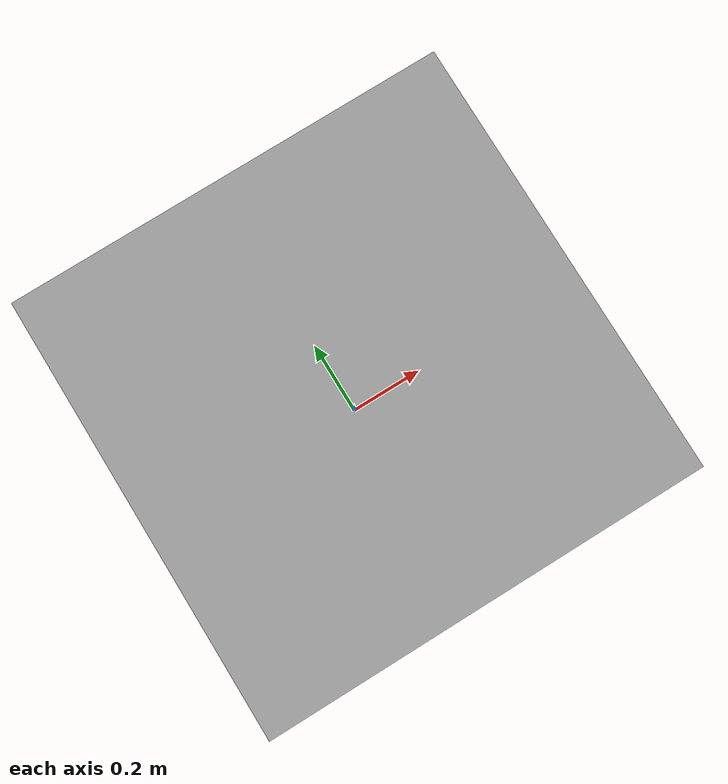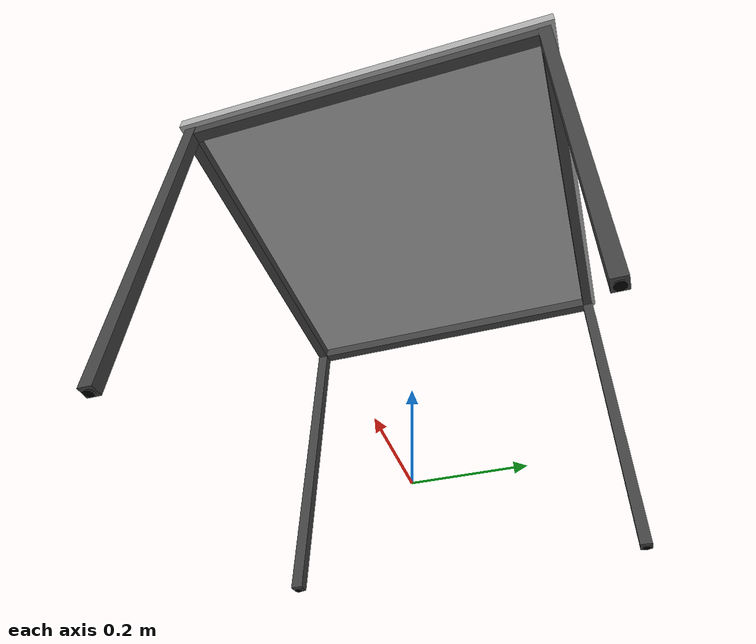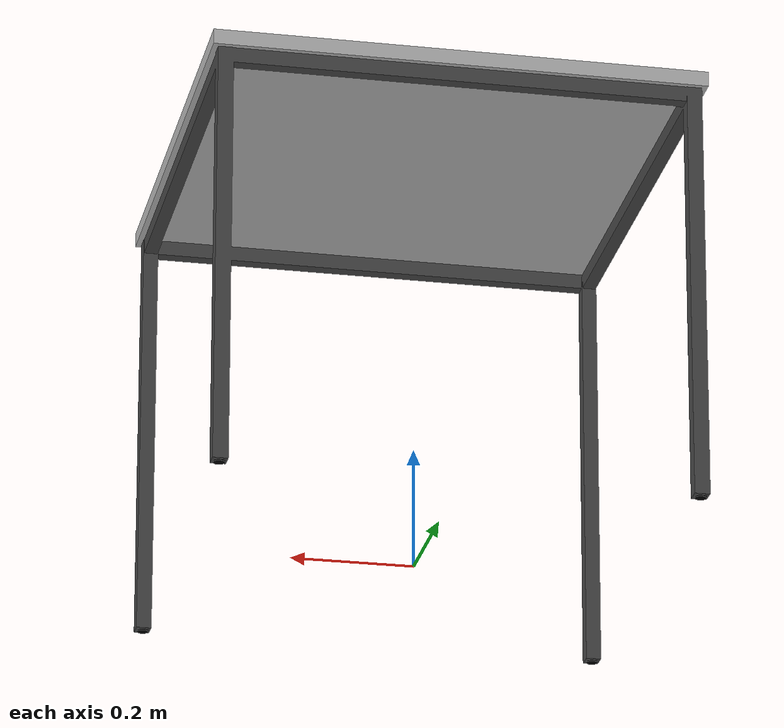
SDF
<?xml version="1.0" ?>

<sdf version="1.5">
  <model name="SmallTable">
    <static>true</static>
    <link name="SmallTable">
      <collision name="collision">
	<geometry>
            <mesh>
	      <uri>model://SmallTable/SmallTable.dae</uri>
	    </mesh>
          </geometry>
      </collision>
      <visual name="vis">
        <cast_shadows>false</cast_shadows>
	<geometry>
            <mesh>
	      <uri>model://SmallTable/SmallTable.dae</uri>
	    </mesh>
          </geometry>
      </visual>
    </link>
  </model>
</sdf>
